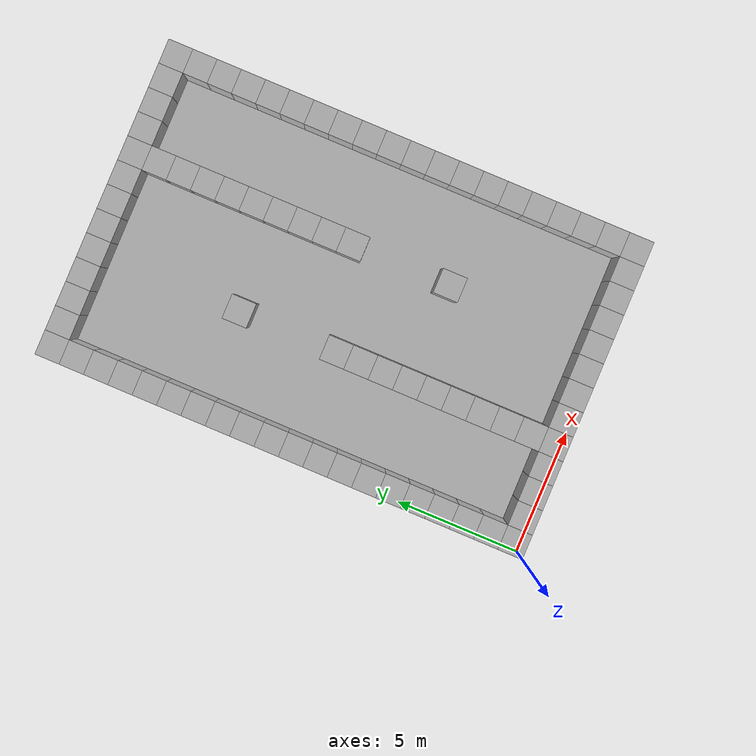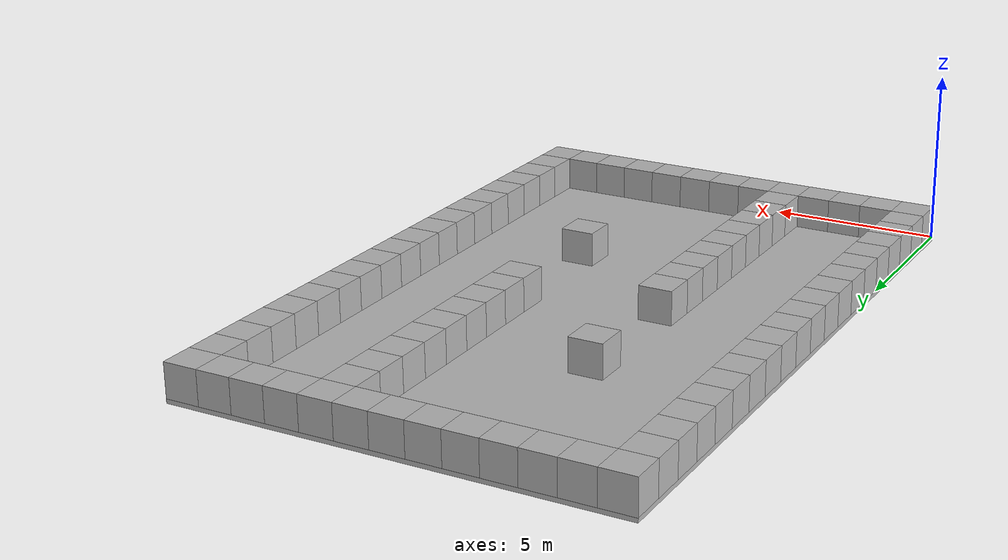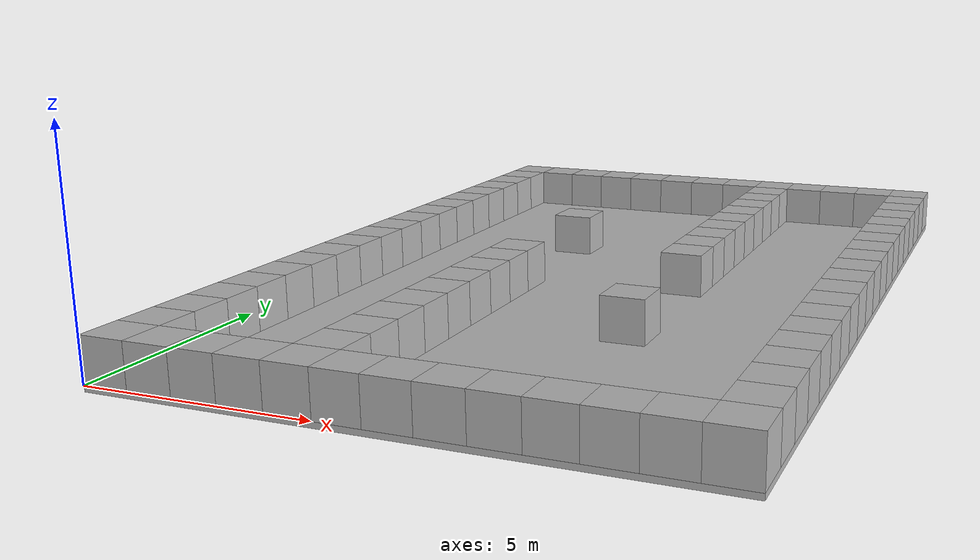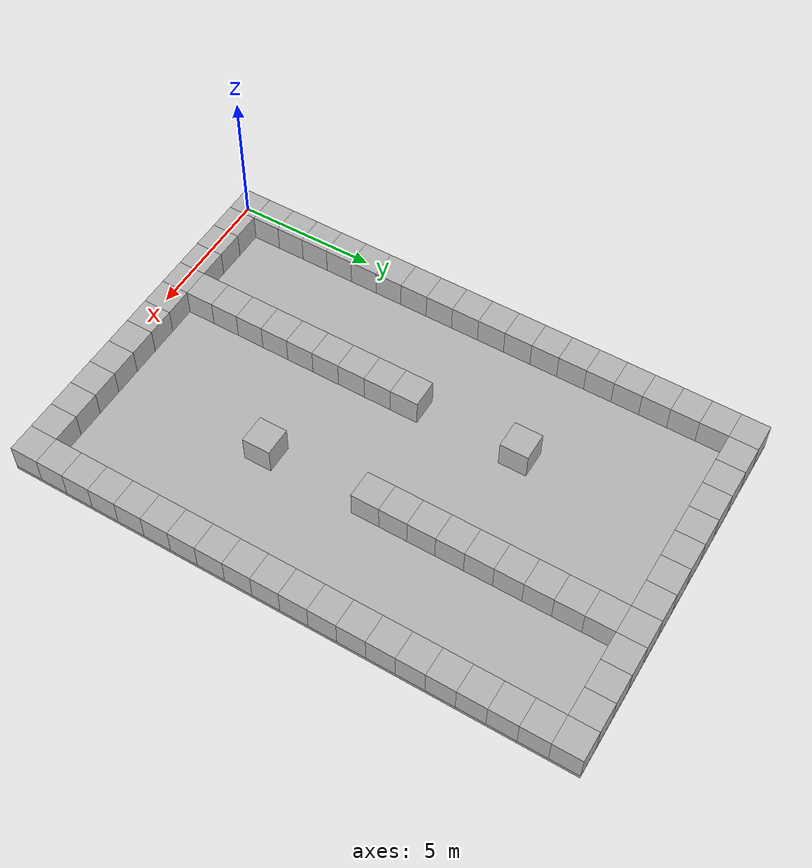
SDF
<sdf version="1.4">
  <world name="default">
    <light name="sun" type="directional">
      <cast_shadows>1</cast_shadows>
      <diffuse>0.8 0.8 0.8 1</diffuse>
      <specular>0.1 0.1 0.1 1</specular>
      <attenuation>
        <range>1000</range>
        <constant>0.9</constant>
        <linear>0.01</linear>
        <quadratic>0.001</quadratic>
      </attenuation>
      <direction>-0.5 0.5 -1</direction>
    </light>
    <model name="floor">
      <pose>6.5 10.0 -0.0625 0 0 0</pose>
      <static>true</static>
      <link name="link">
        <collision name="collision">
          <geometry>
            <box>
              <size>13.0 20.0 0.125</size>
            </box>
          </geometry>
        </collision>
        <visual name="visual">
          <geometry>
            <box>
              <size>13.0 20.0 0.125</size>
            </box>
          </geometry>
        </visual>
      </link>
    </model>
    <model name="box_0_0">
      <pose>0.5 0.5 0.5 0 0 0</pose>
      <static>true</static>
      <link name="link">
        <collision name="collision">
          <geometry>
            <box>
              <size>1.0 1.0 1.0</size>
            </box>
          </geometry>
        </collision>
        <visual name="visual">
          <geometry>
            <box>
              <size>1.0 1.0 1.0</size>
            </box>
          </geometry>
        </visual>
      </link>
    </model>
    <model name="box_0_1">
      <pose>0.5 1.5 0.5 0 0 0</pose>
      <static>true</static>
      <link name="link">
        <collision name="collision">
          <geometry>
            <box>
              <size>1.0 1.0 1.0</size>
            </box>
          </geometry>
        </collision>
        <visual name="visual">
          <geometry>
            <box>
              <size>1.0 1.0 1.0</size>
            </box>
          </geometry>
        </visual>
      </link>
    </model>
    <model name="box_0_2">
      <pose>0.5 2.5 0.5 0 0 0</pose>
      <static>true</static>
      <link name="link">
        <collision name="collision">
          <geometry>
            <box>
              <size>1.0 1.0 1.0</size>
            </box>
          </geometry>
        </collision>
        <visual name="visual">
          <geometry>
            <box>
              <size>1.0 1.0 1.0</size>
            </box>
          </geometry>
        </visual>
      </link>
    </model>
    <model name="box_0_3">
      <pose>0.5 3.5 0.5 0 0 0</pose>
      <static>true</static>
      <link name="link">
        <collision name="collision">
          <geometry>
            <box>
              <size>1.0 1.0 1.0</size>
            </box>
          </geometry>
        </collision>
        <visual name="visual">
          <geometry>
            <box>
              <size>1.0 1.0 1.0</size>
            </box>
          </geometry>
        </visual>
      </link>
    </model>
    <model name="box_0_4">
      <pose>0.5 4.5 0.5 0 0 0</pose>
      <static>true</static>
      <link name="link">
        <collision name="collision">
          <geometry>
            <box>
              <size>1.0 1.0 1.0</size>
            </box>
          </geometry>
        </collision>
        <visual name="visual">
          <geometry>
            <box>
              <size>1.0 1.0 1.0</size>
            </box>
          </geometry>
        </visual>
      </link>
    </model>
    <model name="box_0_5">
      <pose>0.5 5.5 0.5 0 0 0</pose>
      <static>true</static>
      <link name="link">
        <collision name="collision">
          <geometry>
            <box>
              <size>1.0 1.0 1.0</size>
            </box>
          </geometry>
        </collision>
        <visual name="visual">
          <geometry>
            <box>
              <size>1.0 1.0 1.0</size>
            </box>
          </geometry>
        </visual>
      </link>
    </model>
    <model name="box_0_6">
      <pose>0.5 6.5 0.5 0 0 0</pose>
      <static>true</static>
      <link name="link">
        <collision name="collision">
          <geometry>
            <box>
              <size>1.0 1.0 1.0</size>
            </box>
          </geometry>
        </collision>
        <visual name="visual">
          <geometry>
            <box>
              <size>1.0 1.0 1.0</size>
            </box>
          </geometry>
        </visual>
      </link>
    </model>
    <model name="box_0_7">
      <pose>0.5 7.5 0.5 0 0 0</pose>
      <static>true</static>
      <link name="link">
        <collision name="collision">
          <geometry>
            <box>
              <size>1.0 1.0 1.0</size>
            </box>
          </geometry>
        </collision>
        <visual name="visual">
          <geometry>
            <box>
              <size>1.0 1.0 1.0</size>
            </box>
          </geometry>
        </visual>
      </link>
    </model>
    <model name="box_0_8">
      <pose>0.5 8.5 0.5 0 0 0</pose>
      <static>true</static>
      <link name="link">
        <collision name="collision">
          <geometry>
            <box>
              <size>1.0 1.0 1.0</size>
            </box>
          </geometry>
        </collision>
        <visual name="visual">
          <geometry>
            <box>
              <size>1.0 1.0 1.0</size>
            </box>
          </geometry>
        </visual>
      </link>
    </model>
    <model name="box_0_9">
      <pose>0.5 9.5 0.5 0 0 0</pose>
      <static>true</static>
      <link name="link">
        <collision name="collision">
          <geometry>
            <box>
              <size>1.0 1.0 1.0</size>
            </box>
          </geometry>
        </collision>
        <visual name="visual">
          <geometry>
            <box>
              <size>1.0 1.0 1.0</size>
            </box>
          </geometry>
        </visual>
      </link>
    </model>
    <model name="box_0_10">
      <pose>0.5 10.5 0.5 0 0 0</pose>
      <static>true</static>
      <link name="link">
        <collision name="collision">
          <geometry>
            <box>
              <size>1.0 1.0 1.0</size>
            </box>
          </geometry>
        </collision>
        <visual name="visual">
          <geometry>
            <box>
              <size>1.0 1.0 1.0</size>
            </box>
          </geometry>
        </visual>
      </link>
    </model>
    <model name="box_0_11">
      <pose>0.5 11.5 0.5 0 0 0</pose>
      <static>true</static>
      <link name="link">
        <collision name="collision">
          <geometry>
            <box>
              <size>1.0 1.0 1.0</size>
            </box>
          </geometry>
        </collision>
        <visual name="visual">
          <geometry>
            <box>
              <size>1.0 1.0 1.0</size>
            </box>
          </geometry>
        </visual>
      </link>
    </model>
    <model name="box_0_12">
      <pose>0.5 12.5 0.5 0 0 0</pose>
      <static>true</static>
      <link name="link">
        <collision name="collision">
          <geometry>
            <box>
              <size>1.0 1.0 1.0</size>
            </box>
          </geometry>
        </collision>
        <visual name="visual">
          <geometry>
            <box>
              <size>1.0 1.0 1.0</size>
            </box>
          </geometry>
        </visual>
      </link>
    </model>
    <model name="box_0_13">
      <pose>0.5 13.5 0.5 0 0 0</pose>
      <static>true</static>
      <link name="link">
        <collision name="collision">
          <geometry>
            <box>
              <size>1.0 1.0 1.0</size>
            </box>
          </geometry>
        </collision>
        <visual name="visual">
          <geometry>
            <box>
              <size>1.0 1.0 1.0</size>
            </box>
          </geometry>
        </visual>
      </link>
    </model>
    <model name="box_0_14">
      <pose>0.5 14.5 0.5 0 0 0</pose>
      <static>true</static>
      <link name="link">
        <collision name="collision">
          <geometry>
            <box>
              <size>1.0 1.0 1.0</size>
            </box>
          </geometry>
        </collision>
        <visual name="visual">
          <geometry>
            <box>
              <size>1.0 1.0 1.0</size>
            </box>
          </geometry>
        </visual>
      </link>
    </model>
    <model name="box_0_15">
      <pose>0.5 15.5 0.5 0 0 0</pose>
      <static>true</static>
      <link name="link">
        <collision name="collision">
          <geometry>
            <box>
              <size>1.0 1.0 1.0</size>
            </box>
          </geometry>
        </collision>
        <visual name="visual">
          <geometry>
            <box>
              <size>1.0 1.0 1.0</size>
            </box>
          </geometry>
        </visual>
      </link>
    </model>
    <model name="box_0_16">
      <pose>0.5 16.5 0.5 0 0 0</pose>
      <static>true</static>
      <link name="link">
        <collision name="collision">
          <geometry>
            <box>
              <size>1.0 1.0 1.0</size>
            </box>
          </geometry>
        </collision>
        <visual name="visual">
          <geometry>
            <box>
              <size>1.0 1.0 1.0</size>
            </box>
          </geometry>
        </visual>
      </link>
    </model>
    <model name="box_0_17">
      <pose>0.5 17.5 0.5 0 0 0</pose>
      <static>true</static>
      <link name="link">
        <collision name="collision">
          <geometry>
            <box>
              <size>1.0 1.0 1.0</size>
            </box>
          </geometry>
        </collision>
        <visual name="visual">
          <geometry>
            <box>
              <size>1.0 1.0 1.0</size>
            </box>
          </geometry>
        </visual>
      </link>
    </model>
    <model name="box_0_18">
      <pose>0.5 18.5 0.5 0 0 0</pose>
      <static>true</static>
      <link name="link">
        <collision name="collision">
          <geometry>
            <box>
              <size>1.0 1.0 1.0</size>
            </box>
          </geometry>
        </collision>
        <visual name="visual">
          <geometry>
            <box>
              <size>1.0 1.0 1.0</size>
            </box>
          </geometry>
        </visual>
      </link>
    </model>
    <model name="box_0_19">
      <pose>0.5 19.5 0.5 0 0 0</pose>
      <static>true</static>
      <link name="link">
        <collision name="collision">
          <geometry>
            <box>
              <size>1.0 1.0 1.0</size>
            </box>
          </geometry>
        </collision>
        <visual name="visual">
          <geometry>
            <box>
              <size>1.0 1.0 1.0</size>
            </box>
          </geometry>
        </visual>
      </link>
    </model>
    <model name="box_1_0">
      <pose>1.5 0.5 0.5 0 0 0</pose>
      <static>true</static>
      <link name="link">
        <collision name="collision">
          <geometry>
            <box>
              <size>1.0 1.0 1.0</size>
            </box>
          </geometry>
        </collision>
        <visual name="visual">
          <geometry>
            <box>
              <size>1.0 1.0 1.0</size>
            </box>
          </geometry>
        </visual>
      </link>
    </model>
    <model name="box_1_19">
      <pose>1.5 19.5 0.5 0 0 0</pose>
      <static>true</static>
      <link name="link">
        <collision name="collision">
          <geometry>
            <box>
              <size>1.0 1.0 1.0</size>
            </box>
          </geometry>
        </collision>
        <visual name="visual">
          <geometry>
            <box>
              <size>1.0 1.0 1.0</size>
            </box>
          </geometry>
        </visual>
      </link>
    </model>
    <model name="box_2_0">
      <pose>2.5 0.5 0.5 0 0 0</pose>
      <static>true</static>
      <link name="link">
        <collision name="collision">
          <geometry>
            <box>
              <size>1.0 1.0 1.0</size>
            </box>
          </geometry>
        </collision>
        <visual name="visual">
          <geometry>
            <box>
              <size>1.0 1.0 1.0</size>
            </box>
          </geometry>
        </visual>
      </link>
    </model>
    <model name="box_2_19">
      <pose>2.5 19.5 0.5 0 0 0</pose>
      <static>true</static>
      <link name="link">
        <collision name="collision">
          <geometry>
            <box>
              <size>1.0 1.0 1.0</size>
            </box>
          </geometry>
        </collision>
        <visual name="visual">
          <geometry>
            <box>
              <size>1.0 1.0 1.0</size>
            </box>
          </geometry>
        </visual>
      </link>
    </model>
    <model name="box_3_0">
      <pose>3.5 0.5 0.5 0 0 0</pose>
      <static>true</static>
      <link name="link">
        <collision name="collision">
          <geometry>
            <box>
              <size>1.0 1.0 1.0</size>
            </box>
          </geometry>
        </collision>
        <visual name="visual">
          <geometry>
            <box>
              <size>1.0 1.0 1.0</size>
            </box>
          </geometry>
        </visual>
      </link>
    </model>
    <model name="box_3_19">
      <pose>3.5 19.5 0.5 0 0 0</pose>
      <static>true</static>
      <link name="link">
        <collision name="collision">
          <geometry>
            <box>
              <size>1.0 1.0 1.0</size>
            </box>
          </geometry>
        </collision>
        <visual name="visual">
          <geometry>
            <box>
              <size>1.0 1.0 1.0</size>
            </box>
          </geometry>
        </visual>
      </link>
    </model>
    <model name="box_4_0">
      <pose>4.5 0.5 0.5 0 0 0</pose>
      <static>true</static>
      <link name="link">
        <collision name="collision">
          <geometry>
            <box>
              <size>1.0 1.0 1.0</size>
            </box>
          </geometry>
        </collision>
        <visual name="visual">
          <geometry>
            <box>
              <size>1.0 1.0 1.0</size>
            </box>
          </geometry>
        </visual>
      </link>
    </model>
    <model name="box_4_1">
      <pose>4.5 1.5 0.5 0 0 0</pose>
      <static>true</static>
      <link name="link">
        <collision name="collision">
          <geometry>
            <box>
              <size>1.0 1.0 1.0</size>
            </box>
          </geometry>
        </collision>
        <visual name="visual">
          <geometry>
            <box>
              <size>1.0 1.0 1.0</size>
            </box>
          </geometry>
        </visual>
      </link>
    </model>
    <model name="box_4_2">
      <pose>4.5 2.5 0.5 0 0 0</pose>
      <static>true</static>
      <link name="link">
        <collision name="collision">
          <geometry>
            <box>
              <size>1.0 1.0 1.0</size>
            </box>
          </geometry>
        </collision>
        <visual name="visual">
          <geometry>
            <box>
              <size>1.0 1.0 1.0</size>
            </box>
          </geometry>
        </visual>
      </link>
    </model>
    <model name="box_4_3">
      <pose>4.5 3.5 0.5 0 0 0</pose>
      <static>true</static>
      <link name="link">
        <collision name="collision">
          <geometry>
            <box>
              <size>1.0 1.0 1.0</size>
            </box>
          </geometry>
        </collision>
        <visual name="visual">
          <geometry>
            <box>
              <size>1.0 1.0 1.0</size>
            </box>
          </geometry>
        </visual>
      </link>
    </model>
    <model name="box_4_4">
      <pose>4.5 4.5 0.5 0 0 0</pose>
      <static>true</static>
      <link name="link">
        <collision name="collision">
          <geometry>
            <box>
              <size>1.0 1.0 1.0</size>
            </box>
          </geometry>
        </collision>
        <visual name="visual">
          <geometry>
            <box>
              <size>1.0 1.0 1.0</size>
            </box>
          </geometry>
        </visual>
      </link>
    </model>
    <model name="box_4_5">
      <pose>4.5 5.5 0.5 0 0 0</pose>
      <static>true</static>
      <link name="link">
        <collision name="collision">
          <geometry>
            <box>
              <size>1.0 1.0 1.0</size>
            </box>
          </geometry>
        </collision>
        <visual name="visual">
          <geometry>
            <box>
              <size>1.0 1.0 1.0</size>
            </box>
          </geometry>
        </visual>
      </link>
    </model>
    <model name="box_4_6">
      <pose>4.5 6.5 0.5 0 0 0</pose>
      <static>true</static>
      <link name="link">
        <collision name="collision">
          <geometry>
            <box>
              <size>1.0 1.0 1.0</size>
            </box>
          </geometry>
        </collision>
        <visual name="visual">
          <geometry>
            <box>
              <size>1.0 1.0 1.0</size>
            </box>
          </geometry>
        </visual>
      </link>
    </model>
    <model name="box_4_7">
      <pose>4.5 7.5 0.5 0 0 0</pose>
      <static>true</static>
      <link name="link">
        <collision name="collision">
          <geometry>
            <box>
              <size>1.0 1.0 1.0</size>
            </box>
          </geometry>
        </collision>
        <visual name="visual">
          <geometry>
            <box>
              <size>1.0 1.0 1.0</size>
            </box>
          </geometry>
        </visual>
      </link>
    </model>
    <model name="box_4_8">
      <pose>4.5 8.5 0.5 0 0 0</pose>
      <static>true</static>
      <link name="link">
        <collision name="collision">
          <geometry>
            <box>
              <size>1.0 1.0 1.0</size>
            </box>
          </geometry>
        </collision>
        <visual name="visual">
          <geometry>
            <box>
              <size>1.0 1.0 1.0</size>
            </box>
          </geometry>
        </visual>
      </link>
    </model>
    <model name="box_4_9">
      <pose>4.5 9.5 0.5 0 0 0</pose>
      <static>true</static>
      <link name="link">
        <collision name="collision">
          <geometry>
            <box>
              <size>1.0 1.0 1.0</size>
            </box>
          </geometry>
        </collision>
        <visual name="visual">
          <geometry>
            <box>
              <size>1.0 1.0 1.0</size>
            </box>
          </geometry>
        </visual>
      </link>
    </model>
    <model name="box_4_13">
      <pose>4.5 13.5 0.5 0 0 0</pose>
      <static>true</static>
      <link name="link">
        <collision name="collision">
          <geometry>
            <box>
              <size>1.0 1.0 1.0</size>
            </box>
          </geometry>
        </collision>
        <visual name="visual">
          <geometry>
            <box>
              <size>1.0 1.0 1.0</size>
            </box>
          </geometry>
        </visual>
      </link>
    </model>
    <model name="box_4_19">
      <pose>4.5 19.5 0.5 0 0 0</pose>
      <static>true</static>
      <link name="link">
        <collision name="collision">
          <geometry>
            <box>
              <size>1.0 1.0 1.0</size>
            </box>
          </geometry>
        </collision>
        <visual name="visual">
          <geometry>
            <box>
              <size>1.0 1.0 1.0</size>
            </box>
          </geometry>
        </visual>
      </link>
    </model>
    <model name="box_5_0">
      <pose>5.5 0.5 0.5 0 0 0</pose>
      <static>true</static>
      <link name="link">
        <collision name="collision">
          <geometry>
            <box>
              <size>1.0 1.0 1.0</size>
            </box>
          </geometry>
        </collision>
        <visual name="visual">
          <geometry>
            <box>
              <size>1.0 1.0 1.0</size>
            </box>
          </geometry>
        </visual>
      </link>
    </model>
    <model name="box_5_19">
      <pose>5.5 19.5 0.5 0 0 0</pose>
      <static>true</static>
      <link name="link">
        <collision name="collision">
          <geometry>
            <box>
              <size>1.0 1.0 1.0</size>
            </box>
          </geometry>
        </collision>
        <visual name="visual">
          <geometry>
            <box>
              <size>1.0 1.0 1.0</size>
            </box>
          </geometry>
        </visual>
      </link>
    </model>
    <model name="box_6_0">
      <pose>6.5 0.5 0.5 0 0 0</pose>
      <static>true</static>
      <link name="link">
        <collision name="collision">
          <geometry>
            <box>
              <size>1.0 1.0 1.0</size>
            </box>
          </geometry>
        </collision>
        <visual name="visual">
          <geometry>
            <box>
              <size>1.0 1.0 1.0</size>
            </box>
          </geometry>
        </visual>
      </link>
    </model>
    <model name="box_6_19">
      <pose>6.5 19.5 0.5 0 0 0</pose>
      <static>true</static>
      <link name="link">
        <collision name="collision">
          <geometry>
            <box>
              <size>1.0 1.0 1.0</size>
            </box>
          </geometry>
        </collision>
        <visual name="visual">
          <geometry>
            <box>
              <size>1.0 1.0 1.0</size>
            </box>
          </geometry>
        </visual>
      </link>
    </model>
    <model name="box_7_0">
      <pose>7.5 0.5 0.5 0 0 0</pose>
      <static>true</static>
      <link name="link">
        <collision name="collision">
          <geometry>
            <box>
              <size>1.0 1.0 1.0</size>
            </box>
          </geometry>
        </collision>
        <visual name="visual">
          <geometry>
            <box>
              <size>1.0 1.0 1.0</size>
            </box>
          </geometry>
        </visual>
      </link>
    </model>
    <model name="box_7_19">
      <pose>7.5 19.5 0.5 0 0 0</pose>
      <static>true</static>
      <link name="link">
        <collision name="collision">
          <geometry>
            <box>
              <size>1.0 1.0 1.0</size>
            </box>
          </geometry>
        </collision>
        <visual name="visual">
          <geometry>
            <box>
              <size>1.0 1.0 1.0</size>
            </box>
          </geometry>
        </visual>
      </link>
    </model>
    <model name="box_8_0">
      <pose>8.5 0.5 0.5 0 0 0</pose>
      <static>true</static>
      <link name="link">
        <collision name="collision">
          <geometry>
            <box>
              <size>1.0 1.0 1.0</size>
            </box>
          </geometry>
        </collision>
        <visual name="visual">
          <geometry>
            <box>
              <size>1.0 1.0 1.0</size>
            </box>
          </geometry>
        </visual>
      </link>
    </model>
    <model name="box_8_6">
      <pose>8.5 6.5 0.5 0 0 0</pose>
      <static>true</static>
      <link name="link">
        <collision name="collision">
          <geometry>
            <box>
              <size>1.0 1.0 1.0</size>
            </box>
          </geometry>
        </collision>
        <visual name="visual">
          <geometry>
            <box>
              <size>1.0 1.0 1.0</size>
            </box>
          </geometry>
        </visual>
      </link>
    </model>
    <model name="box_8_10">
      <pose>8.5 10.5 0.5 0 0 0</pose>
      <static>true</static>
      <link name="link">
        <collision name="collision">
          <geometry>
            <box>
              <size>1.0 1.0 1.0</size>
            </box>
          </geometry>
        </collision>
        <visual name="visual">
          <geometry>
            <box>
              <size>1.0 1.0 1.0</size>
            </box>
          </geometry>
        </visual>
      </link>
    </model>
    <model name="box_8_11">
      <pose>8.5 11.5 0.5 0 0 0</pose>
      <static>true</static>
      <link name="link">
        <collision name="collision">
          <geometry>
            <box>
              <size>1.0 1.0 1.0</size>
            </box>
          </geometry>
        </collision>
        <visual name="visual">
          <geometry>
            <box>
              <size>1.0 1.0 1.0</size>
            </box>
          </geometry>
        </visual>
      </link>
    </model>
    <model name="box_8_12">
      <pose>8.5 12.5 0.5 0 0 0</pose>
      <static>true</static>
      <link name="link">
        <collision name="collision">
          <geometry>
            <box>
              <size>1.0 1.0 1.0</size>
            </box>
          </geometry>
        </collision>
        <visual name="visual">
          <geometry>
            <box>
              <size>1.0 1.0 1.0</size>
            </box>
          </geometry>
        </visual>
      </link>
    </model>
    <model name="box_8_13">
      <pose>8.5 13.5 0.5 0 0 0</pose>
      <static>true</static>
      <link name="link">
        <collision name="collision">
          <geometry>
            <box>
              <size>1.0 1.0 1.0</size>
            </box>
          </geometry>
        </collision>
        <visual name="visual">
          <geometry>
            <box>
              <size>1.0 1.0 1.0</size>
            </box>
          </geometry>
        </visual>
      </link>
    </model>
    <model name="box_8_14">
      <pose>8.5 14.5 0.5 0 0 0</pose>
      <static>true</static>
      <link name="link">
        <collision name="collision">
          <geometry>
            <box>
              <size>1.0 1.0 1.0</size>
            </box>
          </geometry>
        </collision>
        <visual name="visual">
          <geometry>
            <box>
              <size>1.0 1.0 1.0</size>
            </box>
          </geometry>
        </visual>
      </link>
    </model>
    <model name="box_8_15">
      <pose>8.5 15.5 0.5 0 0 0</pose>
      <static>true</static>
      <link name="link">
        <collision name="collision">
          <geometry>
            <box>
              <size>1.0 1.0 1.0</size>
            </box>
          </geometry>
        </collision>
        <visual name="visual">
          <geometry>
            <box>
              <size>1.0 1.0 1.0</size>
            </box>
          </geometry>
        </visual>
      </link>
    </model>
    <model name="box_8_16">
      <pose>8.5 16.5 0.5 0 0 0</pose>
      <static>true</static>
      <link name="link">
        <collision name="collision">
          <geometry>
            <box>
              <size>1.0 1.0 1.0</size>
            </box>
          </geometry>
        </collision>
        <visual name="visual">
          <geometry>
            <box>
              <size>1.0 1.0 1.0</size>
            </box>
          </geometry>
        </visual>
      </link>
    </model>
    <model name="box_8_17">
      <pose>8.5 17.5 0.5 0 0 0</pose>
      <static>true</static>
      <link name="link">
        <collision name="collision">
          <geometry>
            <box>
              <size>1.0 1.0 1.0</size>
            </box>
          </geometry>
        </collision>
        <visual name="visual">
          <geometry>
            <box>
              <size>1.0 1.0 1.0</size>
            </box>
          </geometry>
        </visual>
      </link>
    </model>
    <model name="box_8_18">
      <pose>8.5 18.5 0.5 0 0 0</pose>
      <static>true</static>
      <link name="link">
        <collision name="collision">
          <geometry>
            <box>
              <size>1.0 1.0 1.0</size>
            </box>
          </geometry>
        </collision>
        <visual name="visual">
          <geometry>
            <box>
              <size>1.0 1.0 1.0</size>
            </box>
          </geometry>
        </visual>
      </link>
    </model>
    <model name="box_8_19">
      <pose>8.5 19.5 0.5 0 0 0</pose>
      <static>true</static>
      <link name="link">
        <collision name="collision">
          <geometry>
            <box>
              <size>1.0 1.0 1.0</size>
            </box>
          </geometry>
        </collision>
        <visual name="visual">
          <geometry>
            <box>
              <size>1.0 1.0 1.0</size>
            </box>
          </geometry>
        </visual>
      </link>
    </model>
    <model name="box_9_0">
      <pose>9.5 0.5 0.5 0 0 0</pose>
      <static>true</static>
      <link name="link">
        <collision name="collision">
          <geometry>
            <box>
              <size>1.0 1.0 1.0</size>
            </box>
          </geometry>
        </collision>
        <visual name="visual">
          <geometry>
            <box>
              <size>1.0 1.0 1.0</size>
            </box>
          </geometry>
        </visual>
      </link>
    </model>
    <model name="box_9_19">
      <pose>9.5 19.5 0.5 0 0 0</pose>
      <static>true</static>
      <link name="link">
        <collision name="collision">
          <geometry>
            <box>
              <size>1.0 1.0 1.0</size>
            </box>
          </geometry>
        </collision>
        <visual name="visual">
          <geometry>
            <box>
              <size>1.0 1.0 1.0</size>
            </box>
          </geometry>
        </visual>
      </link>
    </model>
    <model name="box_10_0">
      <pose>10.5 0.5 0.5 0 0 0</pose>
      <static>true</static>
      <link name="link">
        <collision name="collision">
          <geometry>
            <box>
              <size>1.0 1.0 1.0</size>
            </box>
          </geometry>
        </collision>
        <visual name="visual">
          <geometry>
            <box>
              <size>1.0 1.0 1.0</size>
            </box>
          </geometry>
        </visual>
      </link>
    </model>
    <model name="box_10_19">
      <pose>10.5 19.5 0.5 0 0 0</pose>
      <static>true</static>
      <link name="link">
        <collision name="collision">
          <geometry>
            <box>
              <size>1.0 1.0 1.0</size>
            </box>
          </geometry>
        </collision>
        <visual name="visual">
          <geometry>
            <box>
              <size>1.0 1.0 1.0</size>
            </box>
          </geometry>
        </visual>
      </link>
    </model>
    <model name="box_11_0">
      <pose>11.5 0.5 0.5 0 0 0</pose>
      <static>true</static>
      <link name="link">
        <collision name="collision">
          <geometry>
            <box>
              <size>1.0 1.0 1.0</size>
            </box>
          </geometry>
        </collision>
        <visual name="visual">
          <geometry>
            <box>
              <size>1.0 1.0 1.0</size>
            </box>
          </geometry>
        </visual>
      </link>
    </model>
    <model name="box_11_19">
      <pose>11.5 19.5 0.5 0 0 0</pose>
      <static>true</static>
      <link name="link">
        <collision name="collision">
          <geometry>
            <box>
              <size>1.0 1.0 1.0</size>
            </box>
          </geometry>
        </collision>
        <visual name="visual">
          <geometry>
            <box>
              <size>1.0 1.0 1.0</size>
            </box>
          </geometry>
        </visual>
      </link>
    </model>
    <model name="box_12_0">
      <pose>12.5 0.5 0.5 0 0 0</pose>
      <static>true</static>
      <link name="link">
        <collision name="collision">
          <geometry>
            <box>
              <size>1.0 1.0 1.0</size>
            </box>
          </geometry>
        </collision>
        <visual name="visual">
          <geometry>
            <box>
              <size>1.0 1.0 1.0</size>
            </box>
          </geometry>
        </visual>
      </link>
    </model>
    <model name="box_12_1">
      <pose>12.5 1.5 0.5 0 0 0</pose>
      <static>true</static>
      <link name="link">
        <collision name="collision">
          <geometry>
            <box>
              <size>1.0 1.0 1.0</size>
            </box>
          </geometry>
        </collision>
        <visual name="visual">
          <geometry>
            <box>
              <size>1.0 1.0 1.0</size>
            </box>
          </geometry>
        </visual>
      </link>
    </model>
    <model name="box_12_2">
      <pose>12.5 2.5 0.5 0 0 0</pose>
      <static>true</static>
      <link name="link">
        <collision name="collision">
          <geometry>
            <box>
              <size>1.0 1.0 1.0</size>
            </box>
          </geometry>
        </collision>
        <visual name="visual">
          <geometry>
            <box>
              <size>1.0 1.0 1.0</size>
            </box>
          </geometry>
        </visual>
      </link>
    </model>
    <model name="box_12_3">
      <pose>12.5 3.5 0.5 0 0 0</pose>
      <static>true</static>
      <link name="link">
        <collision name="collision">
          <geometry>
            <box>
              <size>1.0 1.0 1.0</size>
            </box>
          </geometry>
        </collision>
        <visual name="visual">
          <geometry>
            <box>
              <size>1.0 1.0 1.0</size>
            </box>
          </geometry>
        </visual>
      </link>
    </model>
    <model name="box_12_4">
      <pose>12.5 4.5 0.5 0 0 0</pose>
      <static>true</static>
      <link name="link">
        <collision name="collision">
          <geometry>
            <box>
              <size>1.0 1.0 1.0</size>
            </box>
          </geometry>
        </collision>
        <visual name="visual">
          <geometry>
            <box>
              <size>1.0 1.0 1.0</size>
            </box>
          </geometry>
        </visual>
      </link>
    </model>
    <model name="box_12_5">
      <pose>12.5 5.5 0.5 0 0 0</pose>
      <static>true</static>
      <link name="link">
        <collision name="collision">
          <geometry>
            <box>
              <size>1.0 1.0 1.0</size>
            </box>
          </geometry>
        </collision>
        <visual name="visual">
          <geometry>
            <box>
              <size>1.0 1.0 1.0</size>
            </box>
          </geometry>
        </visual>
      </link>
    </model>
    <model name="box_12_6">
      <pose>12.5 6.5 0.5 0 0 0</pose>
      <static>true</static>
      <link name="link">
        <collision name="collision">
          <geometry>
            <box>
              <size>1.0 1.0 1.0</size>
            </box>
          </geometry>
        </collision>
        <visual name="visual">
          <geometry>
            <box>
              <size>1.0 1.0 1.0</size>
            </box>
          </geometry>
        </visual>
      </link>
    </model>
    <model name="box_12_7">
      <pose>12.5 7.5 0.5 0 0 0</pose>
      <static>true</static>
      <link name="link">
        <collision name="collision">
          <geometry>
            <box>
              <size>1.0 1.0 1.0</size>
            </box>
          </geometry>
        </collision>
        <visual name="visual">
          <geometry>
            <box>
              <size>1.0 1.0 1.0</size>
            </box>
          </geometry>
        </visual>
      </link>
    </model>
    <model name="box_12_8">
      <pose>12.5 8.5 0.5 0 0 0</pose>
      <static>true</static>
      <link name="link">
        <collision name="collision">
          <geometry>
            <box>
              <size>1.0 1.0 1.0</size>
            </box>
          </geometry>
        </collision>
        <visual name="visual">
          <geometry>
            <box>
              <size>1.0 1.0 1.0</size>
            </box>
          </geometry>
        </visual>
      </link>
    </model>
    <model name="box_12_9">
      <pose>12.5 9.5 0.5 0 0 0</pose>
      <static>true</static>
      <link name="link">
        <collision name="collision">
          <geometry>
            <box>
              <size>1.0 1.0 1.0</size>
            </box>
          </geometry>
        </collision>
        <visual name="visual">
          <geometry>
            <box>
              <size>1.0 1.0 1.0</size>
            </box>
          </geometry>
        </visual>
      </link>
    </model>
    <model name="box_12_10">
      <pose>12.5 10.5 0.5 0 0 0</pose>
      <static>true</static>
      <link name="link">
        <collision name="collision">
          <geometry>
            <box>
              <size>1.0 1.0 1.0</size>
            </box>
          </geometry>
        </collision>
        <visual name="visual">
          <geometry>
            <box>
              <size>1.0 1.0 1.0</size>
            </box>
          </geometry>
        </visual>
      </link>
    </model>
    <model name="box_12_11">
      <pose>12.5 11.5 0.5 0 0 0</pose>
      <static>true</static>
      <link name="link">
        <collision name="collision">
          <geometry>
            <box>
              <size>1.0 1.0 1.0</size>
            </box>
          </geometry>
        </collision>
        <visual name="visual">
          <geometry>
            <box>
              <size>1.0 1.0 1.0</size>
            </box>
          </geometry>
        </visual>
      </link>
    </model>
    <model name="box_12_12">
      <pose>12.5 12.5 0.5 0 0 0</pose>
      <static>true</static>
      <link name="link">
        <collision name="collision">
          <geometry>
            <box>
              <size>1.0 1.0 1.0</size>
            </box>
          </geometry>
        </collision>
        <visual name="visual">
          <geometry>
            <box>
              <size>1.0 1.0 1.0</size>
            </box>
          </geometry>
        </visual>
      </link>
    </model>
    <model name="box_12_13">
      <pose>12.5 13.5 0.5 0 0 0</pose>
      <static>true</static>
      <link name="link">
        <collision name="collision">
          <geometry>
            <box>
              <size>1.0 1.0 1.0</size>
            </box>
          </geometry>
        </collision>
        <visual name="visual">
          <geometry>
            <box>
              <size>1.0 1.0 1.0</size>
            </box>
          </geometry>
        </visual>
      </link>
    </model>
    <model name="box_12_14">
      <pose>12.5 14.5 0.5 0 0 0</pose>
      <static>true</static>
      <link name="link">
        <collision name="collision">
          <geometry>
            <box>
              <size>1.0 1.0 1.0</size>
            </box>
          </geometry>
        </collision>
        <visual name="visual">
          <geometry>
            <box>
              <size>1.0 1.0 1.0</size>
            </box>
          </geometry>
        </visual>
      </link>
    </model>
    <model name="box_12_15">
      <pose>12.5 15.5 0.5 0 0 0</pose>
      <static>true</static>
      <link name="link">
        <collision name="collision">
          <geometry>
            <box>
              <size>1.0 1.0 1.0</size>
            </box>
          </geometry>
        </collision>
        <visual name="visual">
          <geometry>
            <box>
              <size>1.0 1.0 1.0</size>
            </box>
          </geometry>
        </visual>
      </link>
    </model>
    <model name="box_12_16">
      <pose>12.5 16.5 0.5 0 0 0</pose>
      <static>true</static>
      <link name="link">
        <collision name="collision">
          <geometry>
            <box>
              <size>1.0 1.0 1.0</size>
            </box>
          </geometry>
        </collision>
        <visual name="visual">
          <geometry>
            <box>
              <size>1.0 1.0 1.0</size>
            </box>
          </geometry>
        </visual>
      </link>
    </model>
    <model name="box_12_17">
      <pose>12.5 17.5 0.5 0 0 0</pose>
      <static>true</static>
      <link name="link">
        <collision name="collision">
          <geometry>
            <box>
              <size>1.0 1.0 1.0</size>
            </box>
          </geometry>
        </collision>
        <visual name="visual">
          <geometry>
            <box>
              <size>1.0 1.0 1.0</size>
            </box>
          </geometry>
        </visual>
      </link>
    </model>
    <model name="box_12_18">
      <pose>12.5 18.5 0.5 0 0 0</pose>
      <static>true</static>
      <link name="link">
        <collision name="collision">
          <geometry>
            <box>
              <size>1.0 1.0 1.0</size>
            </box>
          </geometry>
        </collision>
        <visual name="visual">
          <geometry>
            <box>
              <size>1.0 1.0 1.0</size>
            </box>
          </geometry>
        </visual>
      </link>
    </model>
    <model name="box_12_19">
      <pose>12.5 19.5 0.5 0 0 0</pose>
      <static>true</static>
      <link name="link">
        <collision name="collision">
          <geometry>
            <box>
              <size>1.0 1.0 1.0</size>
            </box>
          </geometry>
        </collision>
        <visual name="visual">
          <geometry>
            <box>
              <size>1.0 1.0 1.0</size>
            </box>
          </geometry>
        </visual>
      </link>
    </model>
  </world>
</sdf>
